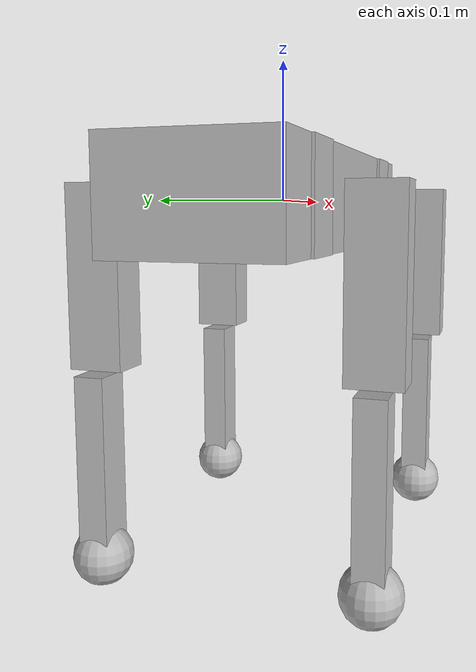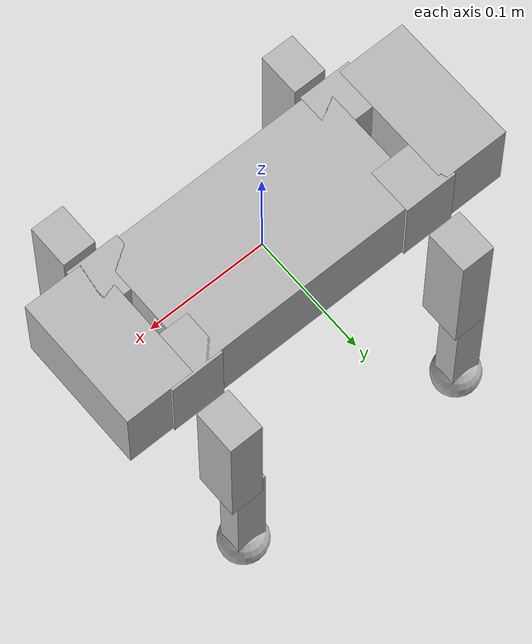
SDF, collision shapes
<sdf version='1.7'>
  <model name='SpotMicroAI'>
    <link name='base_link'>
      <inertial>
        <pose>0 0 0 0 -0 0</pose>
        <mass>3.2</mass>
        <inertia>
          <ixx>300</ixx>
          <ixy>0</ixy>
          <ixz>0</ixz>
          <iyy>300</iyy>
          <iyz>0</iyz>
          <izz>300</izz>
        </inertia>
      </inertial>
      <collision name='base_link_collision'>
        <pose>0 0 0 0 -0 0</pose>
        <geometry>
          <box>
            <size>0.2 0.11 0.07</size>
          </box>
        </geometry>
      </collision>
      <collision name='base_link_fixed_joint_lump__front_link_collision_1'>
        <pose>-0.145 0 0 0 -0 0</pose>
        <geometry>
          <box>
            <size>0.058 0.11 0.07</size>
          </box>
        </geometry>
      </collision>
      <collision name='base_link_fixed_joint_lump__rear_link_collision_2'>
        <pose>0.135 0 0 0 -0 0</pose>
        <geometry>
          <box>
            <size>0.057 0.11 0.07</size>
          </box>
        </geometry>
      </collision>
      <visual name='base_link_visual'>
        <pose>-0.135 0.055 -0.032 0 0 -1.5707</pose>
        <geometry>
          <mesh>
            <scale>0.001 0.001 0.001</scale>
            <uri>model://old_spot_files/meshes/stl_ean/STL/Base.STL</uri>
          </mesh>
        </geometry>
      </visual>
      <visual name='base_link_fixed_joint_lump__front_link_visual_1'>
        <pose>-0.185 0.065 -0.033 0 0 -1.5707</pose>
        <geometry>
          <mesh>
            <scale>0.001 0.001 0.001</scale>
            <uri>model://old_spot_files/meshes/stl_ean/STL/top.STL</uri>
          </mesh>
        </geometry>
      </visual>
      <visual name='base_link_fixed_joint_lump__rear_link_visual_2'>
        <pose>-0.105 0.055 -0.034 0 0 -1.5707</pose>
        <geometry>
          <mesh>
            <scale>0.001 0.001 0.001</scale>
            <uri>model://old_spot_files/meshes/stl_ean/STL/bottom.STL</uri>
          </mesh>
        </geometry>
      </visual>
    </link>
    <joint name='front_left_shoulder' type='revolute'>
      <pose relative_to='base_link'>-0.104 -0.038 0 0 -0 0</pose>
      <parent>base_link</parent>
      <child>front_left_shoulder_link</child>
      <axis>
        <xyz>1 0 0</xyz>
        <limit>
          <lower>-0.548</lower>
          <upper>0.548</upper>
          <effort>1000</effort>
          <velocity>0.7</velocity>
        </limit>
        <dynamics>
          <damping>0</damping>
          <friction>0.5</friction>
          <spring_reference>0</spring_reference>
          <spring_stiffness>0</spring_stiffness>
        </dynamics>
      </axis>
    </joint>
    <link name='front_left_shoulder_link'>
      <pose relative_to='front_left_shoulder'>0 0 0 0 -0 0</pose>
      <inertial>
        <pose>0 0 0 0 -0 0</pose>
        <mass>0.1</mass>
        <inertia>
          <ixx>100</ixx>
          <ixy>0</ixy>
          <ixz>0</ixz>
          <iyy>100</iyy>
          <iyz>0</iyz>
          <izz>100</izz>
        </inertia>
      </inertial>
      <collision name='front_left_shoulder_link_collision'>
        <pose>0 0 0 0 -0 0</pose>
        <geometry>
          <box>
            <size>0.044 0.038 0.07</size>
          </box>
        </geometry>
      </collision>
      <visual name='front_left_shoulder_link_visual'>
        <pose>0.028 -0.03 -0.029 1.57089 -7e-06 3.14159</pose>
        <geometry>
          <mesh>
            <scale>0.001 0.001 0.001</scale>
            <uri>model://old_spot_files/meshes/stl_ean/STL/left_fordward_right_backward_shoulder.STL</uri>
          </mesh>
        </geometry>
      </visual>
    </link>
    <joint name='front_left_leg' type='revolute'>
      <pose relative_to='front_left_shoulder_link'>0 -0.052 0 0 -0 0</pose>
      <parent>front_left_shoulder_link</parent>
      <child>front_left_leg_link</child>
      <axis>
        <xyz>0 1 0</xyz>
        <limit>
          <lower>-2.666</lower>
          <upper>1.548</upper>
          <effort>1000</effort>
          <velocity>0.5</velocity>
        </limit>
        <dynamics>
          <damping>0</damping>
          <friction>0</friction>
          <spring_reference>0</spring_reference>
          <spring_stiffness>0</spring_stiffness>
        </dynamics>
      </axis>
    </joint>
    <link name='front_left_leg_link'>
      <pose relative_to='front_left_leg'>0 0 0 0 -0 0</pose>
      <inertial>
        <pose>0 0 0 0 -0 0</pose>
        <mass>0.15</mass>
        <inertia>
          <ixx>1000</ixx>
          <ixy>0</ixy>
          <ixz>0</ixz>
          <iyy>1000</iyy>
          <iyz>0</iyz>
          <izz>1000</izz>
        </inertia>
      </inertial>
      <collision name='front_left_leg_link_collision'>
        <pose>0 0 -0.05 0 -0 0</pose>
        <geometry>
          <box>
            <size>0.028 0.036 0.12</size>
          </box>
        </geometry>
      </collision>
      <visual name='front_left_leg_link_visual'>
        <pose>-0.02 0.025 -0.132 7e-06 -1.34159 3.14159</pose>
        <geometry>
          <mesh>
            <scale>0.001 0.001 0.001</scale>
            <uri>model://old_spot_files/meshes/stl_ean/STL/left_arm.STL</uri>
          </mesh>
        </geometry>
      </visual>
    </link>
    <joint name='front_left_foot' type='revolute'>
      <pose relative_to='front_left_leg_link'>-0.01 0 -0.12 0 -0 0</pose>
      <parent>front_left_leg_link</parent>
      <child>front_left_foot_link</child>
      <axis>
        <xyz>0 1 0</xyz>
        <limit>
          <lower>-0.1</lower>
          <upper>2.59</upper>
          <effort>1000</effort>
          <velocity>0.5</velocity>
        </limit>
        <dynamics>
          <damping>0</damping>
          <friction>0.5</friction>
          <spring_reference>0</spring_reference>
          <spring_stiffness>0</spring_stiffness>
        </dynamics>
      </axis>
    </joint>
    <link name='front_left_foot_link'>
      <pose relative_to='front_left_foot'>0 0 0 0 -0 0</pose>
      <inertial>
        <pose>0 0 -0.038333 0 -0 0</pose>
        <mass>0.15</mass>
        <inertia>
          <ixx>2000</ixx>
          <ixy>0</ixy>
          <ixz>0</ixz>
          <iyy>2000</iyy>
          <iyz>0</iyz>
          <izz>2000</izz>
        </inertia>
      </inertial>
      <collision name='front_left_foot_link_collision'>
        <pose>0 0 -0.05 0 -0 0</pose>
        <geometry>
          <box>
            <size>0.026 0.02 0.115</size>
          </box>
        </geometry>
      </collision>
      <collision name='front_left_foot_link_fixed_joint_lump__front_left_toe_link_collision_1'>
        <pose>0 0 -0.115 0 -0 0</pose>
        <geometry>
          <sphere>
            <radius>0.02</radius>
          </sphere>
        </geometry>
      </collision>
      <visual name='front_left_foot_link_visual'>
        <pose>0.023 0.018 -0.133 1.5708 -1.5708 0</pose>
        <geometry>
          <mesh>
            <scale>0.001 0.001 0.001</scale>
            <uri>model://old_spot_files/meshes/stl_ean/STL/left_wrist.STL</uri>
          </mesh>
        </geometry>
      </visual>
      <visual name='front_left_foot_link_fixed_joint_lump__front_left_toe_link_visual_1'>
        <pose>0 0 -0.115 3.14159 0.791593 3.14159</pose>
        <geometry>
          <mesh>
            <scale>0.001 0.001 0.001</scale>
            <uri>model://old_spot_files/meshes/stl_ean/STL/Foot_Tip.STL</uri>
          </mesh>
        </geometry>
      </visual>
    </link>
    <joint name='front_right_shoulder' type='revolute'>
      <pose relative_to='base_link'>-0.104 0.038 0 0 -0 0</pose>
      <parent>base_link</parent>
      <child>front_right_shoulder_link</child>
      <axis>
        <xyz>1 0 0</xyz>
        <limit>
          <lower>-0.548</lower>
          <upper>0.548</upper>
          <effort>1000</effort>
          <velocity>0.7</velocity>
        </limit>
        <dynamics>
          <damping>0</damping>
          <friction>0.5</friction>
          <spring_reference>0</spring_reference>
          <spring_stiffness>0</spring_stiffness>
        </dynamics>
      </axis>
    </joint>
    <link name='front_right_shoulder_link'>
      <pose relative_to='front_right_shoulder'>0 0 0 0 -0 0</pose>
      <inertial>
        <pose>0 0 0 0 -0 0</pose>
        <mass>0.1</mass>
        <inertia>
          <ixx>100</ixx>
          <ixy>0</ixy>
          <ixz>0</ixz>
          <iyy>100</iyy>
          <iyz>0</iyz>
          <izz>100</izz>
        </inertia>
      </inertial>
      <collision name='front_right_shoulder_link_collision'>
        <pose>0 0 0 0 -0 0</pose>
        <geometry>
          <box>
            <size>0.044 0.038 0.07</size>
          </box>
        </geometry>
      </collision>
      <visual name='front_right_shoulder_link_visual'>
        <pose>-0.028 0.03 -0.027 1.5707 -0 0</pose>
        <geometry>
          <mesh>
            <scale>0.001 0.001 0.001</scale>
            <uri>model://old_spot_files/meshes/stl_ean/STL/right_fordward_left_backward_shoulder.STL</uri>
          </mesh>
        </geometry>
      </visual>
    </link>
    <joint name='front_right_leg' type='revolute'>
      <pose relative_to='front_right_shoulder_link'>0 0.052 0 0 -0 0</pose>
      <parent>front_right_shoulder_link</parent>
      <child>front_right_leg_link</child>
      <axis>
        <xyz>0 1 0</xyz>
        <limit>
          <lower>-2.666</lower>
          <upper>1.548</upper>
          <effort>1000</effort>
          <velocity>0.5</velocity>
        </limit>
        <dynamics>
          <damping>0</damping>
          <friction>0</friction>
          <spring_reference>0</spring_reference>
          <spring_stiffness>0</spring_stiffness>
        </dynamics>
      </axis>
    </joint>
    <link name='front_right_leg_link'>
      <pose relative_to='front_right_leg'>0 0 0 0 -0 0</pose>
      <inertial>
        <pose>0 0 0 0 -0 0</pose>
        <mass>0.15</mass>
        <inertia>
          <ixx>1000</ixx>
          <ixy>0</ixy>
          <ixz>0</ixz>
          <iyy>1000</iyy>
          <iyz>0</iyz>
          <izz>1000</izz>
        </inertia>
      </inertial>
      <collision name='front_right_leg_link_collision'>
        <pose>0 0 -0.05 0 -0 0</pose>
        <geometry>
          <box>
            <size>0.028 0.036 0.12</size>
          </box>
        </geometry>
      </collision>
      <visual name='front_right_leg_link_visual'>
        <pose>-0.02 0.039 -0.132 7e-06 -1.34159 3.14159</pose>
        <geometry>
          <mesh>
            <scale>0.001 0.001 0.001</scale>
            <uri>model://old_spot_files/meshes/stl_ean/STL/right_arm.STL</uri>
          </mesh>
        </geometry>
      </visual>
    </link>
    <joint name='front_right_foot' type='revolute'>
      <pose relative_to='front_right_leg_link'>-0.01 0 -0.12 0 -0 0</pose>
      <parent>front_right_leg_link</parent>
      <child>front_right_foot_link</child>
      <axis>
        <xyz>0 1 0</xyz>
        <limit>
          <lower>-0.1</lower>
          <upper>2.59</upper>
          <effort>1000</effort>
          <velocity>0.5</velocity>
        </limit>
        <dynamics>
          <damping>0</damping>
          <friction>0.5</friction>
          <spring_reference>0</spring_reference>
          <spring_stiffness>0</spring_stiffness>
        </dynamics>
      </axis>
    </joint>
    <link name='front_right_foot_link'>
      <pose relative_to='front_right_foot'>0 0 0 0 -0 0</pose>
      <inertial>
        <pose>0 0 -0.038333 0 -0 0</pose>
        <mass>0.15</mass>
        <inertia>
          <ixx>2000</ixx>
          <ixy>0</ixy>
          <ixz>0</ixz>
          <iyy>2000</iyy>
          <iyz>0</iyz>
          <izz>2000</izz>
        </inertia>
      </inertial>
      <collision name='front_right_foot_link_collision'>
        <pose>0 0 -0.05 0 -0 0</pose>
        <geometry>
          <box>
            <size>0.026 0.02 0.115</size>
          </box>
        </geometry>
      </collision>
      <collision name='front_right_foot_link_fixed_joint_lump__front_right_toe_link_collision_1'>
        <pose>0 0 -0.115 0 -0 0</pose>
        <geometry>
          <sphere>
            <radius>0.02</radius>
          </sphere>
        </geometry>
      </collision>
      <visual name='front_right_foot_link_visual'>
        <pose>-0.013 -0.018 -0.133 -1.5708 -1.5708 0</pose>
        <geometry>
          <mesh>
            <scale>0.001 0.001 0.001</scale>
            <uri>model://old_spot_files/meshes/stl_ean/STL/right_wrist.STL</uri>
          </mesh>
        </geometry>
      </visual>
      <visual name='front_right_foot_link_fixed_joint_lump__front_right_toe_link_visual_1'>
        <pose>0 0 -0.115 3.14159 0.791593 3.14159</pose>
        <geometry>
          <mesh>
            <scale>0.001 0.001 0.001</scale>
            <uri>model://old_spot_files/meshes/stl_ean/STL/Foot_Tip.STL</uri>
          </mesh>
        </geometry>
      </visual>
    </link>
    <joint name='rear_left_shoulder' type='revolute'>
      <pose relative_to='base_link'>0.104 -0.038 0 0 -0 0</pose>
      <parent>base_link</parent>
      <child>rear_left_shoulder_link</child>
      <axis>
        <xyz>1 0 0</xyz>
        <limit>
          <lower>-0.548</lower>
          <upper>0.548</upper>
          <effort>1000</effort>
          <velocity>0.7</velocity>
        </limit>
        <dynamics>
          <damping>0</damping>
          <friction>0.5</friction>
          <spring_reference>0</spring_reference>
          <spring_stiffness>0</spring_stiffness>
        </dynamics>
      </axis>
    </joint>
    <link name='rear_left_shoulder_link'>
      <pose relative_to='rear_left_shoulder'>0 0 0 0 -0 0</pose>
      <inertial>
        <pose>0 0 0 0 -0 0</pose>
        <mass>0.1</mass>
        <inertia>
          <ixx>100</ixx>
          <ixy>0</ixy>
          <ixz>0</ixz>
          <iyy>100</iyy>
          <iyz>0</iyz>
          <izz>100</izz>
        </inertia>
      </inertial>
      <collision name='rear_left_shoulder_link_collision'>
        <pose>0 0 0 0 -0 0</pose>
        <geometry>
          <box>
            <size>0.044 0.038 0.07</size>
          </box>
        </geometry>
      </collision>
      <visual name='rear_left_shoulder_link_visual'>
        <pose>0.028 -0.03 -0.029 1.57089 -7e-06 3.14159</pose>
        <geometry>
          <mesh>
            <scale>0.001 0.001 0.001</scale>
            <uri>model://old_spot_files/meshes/stl_ean/STL/left_fordward_right_backward_shoulder.STL</uri>
          </mesh>
        </geometry>
      </visual>
    </link>
    <joint name='rear_left_leg' type='revolute'>
      <pose relative_to='rear_left_shoulder_link'>0 -0.052 0 0 -0 0</pose>
      <parent>rear_left_shoulder_link</parent>
      <child>rear_left_leg_link</child>
      <axis>
        <xyz>0 1 0</xyz>
        <limit>
          <lower>-2.666</lower>
          <upper>1.548</upper>
          <effort>1000</effort>
          <velocity>0.5</velocity>
        </limit>
        <dynamics>
          <damping>0</damping>
          <friction>0</friction>
          <spring_reference>0</spring_reference>
          <spring_stiffness>0</spring_stiffness>
        </dynamics>
      </axis>
    </joint>
    <link name='rear_left_leg_link'>
      <pose relative_to='rear_left_leg'>0 0 0 0 -0 0</pose>
      <inertial>
        <pose>0 0 0 0 -0 0</pose>
        <mass>0.15</mass>
        <inertia>
          <ixx>1000</ixx>
          <ixy>0</ixy>
          <ixz>0</ixz>
          <iyy>1000</iyy>
          <iyz>0</iyz>
          <izz>1000</izz>
        </inertia>
      </inertial>
      <collision name='rear_left_leg_link_collision'>
        <pose>0 0 -0.05 0 -0 0</pose>
        <geometry>
          <box>
            <size>0.028 0.036 0.12</size>
          </box>
        </geometry>
      </collision>
      <visual name='rear_left_leg_link_visual'>
        <pose>-0.02 0.025 -0.132 7e-06 -1.34159 3.14159</pose>
        <geometry>
          <mesh>
            <scale>0.001 0.001 0.001</scale>
            <uri>model://old_spot_files/meshes/stl_ean/STL/left_arm.STL</uri>
          </mesh>
        </geometry>
      </visual>
    </link>
    <joint name='rear_left_foot' type='revolute'>
      <pose relative_to='rear_left_leg_link'>-0.01 0 -0.12 0 -0 0</pose>
      <parent>rear_left_leg_link</parent>
      <child>rear_left_foot_link</child>
      <axis>
        <xyz>0 1 0</xyz>
        <limit>
          <lower>-0.1</lower>
          <upper>2.59</upper>
          <effort>1000</effort>
          <velocity>0.5</velocity>
        </limit>
        <dynamics>
          <damping>0</damping>
          <friction>0.5</friction>
          <spring_reference>0</spring_reference>
          <spring_stiffness>0</spring_stiffness>
        </dynamics>
      </axis>
    </joint>
    <link name='rear_left_foot_link'>
      <pose relative_to='rear_left_foot'>0 0 0 0 -0 0</pose>
      <inertial>
        <pose>0 0 -0.038333 0 -0 0</pose>
        <mass>0.15</mass>
        <inertia>
          <ixx>2000</ixx>
          <ixy>0</ixy>
          <ixz>0</ixz>
          <iyy>2000</iyy>
          <iyz>0</iyz>
          <izz>2000</izz>
        </inertia>
      </inertial>
      <collision name='rear_left_foot_link_collision'>
        <pose>0 0 -0.05 0 -0 0</pose>
        <geometry>
          <box>
            <size>0.026 0.02 0.115</size>
          </box>
        </geometry>
      </collision>
      <collision name='rear_left_foot_link_fixed_joint_lump__rear_left_toe_link_collision_1'>
        <pose>0 0 -0.115 0 -0 0</pose>
        <geometry>
          <sphere>
            <radius>0.02</radius>
          </sphere>
        </geometry>
      </collision>
      <visual name='rear_left_foot_link_visual'>
        <pose>0.023 0.018 -0.133 1.5708 -1.5708 0</pose>
        <geometry>
          <mesh>
            <scale>0.001 0.001 0.001</scale>
            <uri>model://old_spot_files/meshes/stl_ean/STL/left_wrist.STL</uri>
          </mesh>
        </geometry>
      </visual>
      <visual name='rear_left_foot_link_fixed_joint_lump__rear_left_toe_link_visual_1'>
        <pose>0 0 -0.115 3.14159 0.791593 3.14159</pose>
        <geometry>
          <mesh>
            <scale>0.001 0.001 0.001</scale>
            <uri>model://old_spot_files/meshes/stl_ean/STL/Foot_Tip.STL</uri>
          </mesh>
        </geometry>
      </visual>
    </link>
    <joint name='rear_right_shoulder' type='revolute'>
      <pose relative_to='base_link'>0.104 0.038 0 0 -0 0</pose>
      <parent>base_link</parent>
      <child>rear_right_shoulder_link</child>
      <axis>
        <xyz>1 0 0</xyz>
        <limit>
          <lower>-0.548</lower>
          <upper>0.548</upper>
          <effort>1000</effort>
          <velocity>0.7</velocity>
        </limit>
        <dynamics>
          <damping>0</damping>
          <friction>0.5</friction>
          <spring_reference>0</spring_reference>
          <spring_stiffness>0</spring_stiffness>
        </dynamics>
      </axis>
    </joint>
    <link name='rear_right_shoulder_link'>
      <pose relative_to='rear_right_shoulder'>0 0 0 0 -0 0</pose>
      <inertial>
        <pose>0 0 0 0 -0 0</pose>
        <mass>0.1</mass>
        <inertia>
          <ixx>100</ixx>
          <ixy>0</ixy>
          <ixz>0</ixz>
          <iyy>100</iyy>
          <iyz>0</iyz>
          <izz>100</izz>
        </inertia>
      </inertial>
      <collision name='rear_right_shoulder_link_collision'>
        <pose>0 0 0 0 -0 0</pose>
        <geometry>
          <box>
            <size>0.044 0.038 0.07</size>
          </box>
        </geometry>
      </collision>
      <visual name='rear_right_shoulder_link_visual'>
        <pose>-0.028 0.03 -0.027 1.5707 -0 0</pose>
        <geometry>
          <mesh>
            <scale>0.001 0.001 0.001</scale>
            <uri>model://old_spot_files/meshes/stl_ean/STL/right_fordward_left_backward_shoulder.STL</uri>
          </mesh>
        </geometry>
      </visual>
    </link>
    <joint name='rear_right_leg' type='revolute'>
      <pose relative_to='rear_right_shoulder_link'>0 0.052 0 0 -0 0</pose>
      <parent>rear_right_shoulder_link</parent>
      <child>rear_right_leg_link</child>
      <axis>
        <xyz>0 1 0</xyz>
        <limit>
          <lower>-2.666</lower>
          <upper>1.548</upper>
          <effort>1000</effort>
          <velocity>0.5</velocity>
        </limit>
        <dynamics>
          <damping>0</damping>
          <friction>0</friction>
          <spring_reference>0</spring_reference>
          <spring_stiffness>0</spring_stiffness>
        </dynamics>
      </axis>
    </joint>
    <link name='rear_right_leg_link'>
      <pose relative_to='rear_right_leg'>0 0 0 0 -0 0</pose>
      <inertial>
        <pose>0 0 0 0 -0 0</pose>
        <mass>0.15</mass>
        <inertia>
          <ixx>1000</ixx>
          <ixy>0</ixy>
          <ixz>0</ixz>
          <iyy>1000</iyy>
          <iyz>0</iyz>
          <izz>1000</izz>
        </inertia>
      </inertial>
      <collision name='rear_right_leg_link_collision'>
        <pose>0 0 -0.05 0 -0 0</pose>
        <geometry>
          <box>
            <size>0.028 0.036 0.12</size>
          </box>
        </geometry>
      </collision>
      <visual name='rear_right_leg_link_visual'>
        <pose>-0.02 0.039 -0.132 7e-06 -1.34159 3.14159</pose>
        <geometry>
          <mesh>
            <scale>0.001 0.001 0.001</scale>
            <uri>model://old_spot_files/meshes/stl_ean/STL/right_arm.STL</uri>
          </mesh>
        </geometry>
      </visual>
    </link>
    <joint name='rear_right_foot' type='revolute'>
      <pose relative_to='rear_right_leg_link'>-0.01 0 -0.12 0 -0 0</pose>
      <parent>rear_right_leg_link</parent>
      <child>rear_right_foot_link</child>
      <axis>
        <xyz>0 1 0</xyz>
        <limit>
          <lower>-0.1</lower>
          <upper>2.59</upper>
          <effort>1000</effort>
          <velocity>0.5</velocity>
        </limit>
        <dynamics>
          <damping>0</damping>
          <friction>0.5</friction>
          <spring_reference>0</spring_reference>
          <spring_stiffness>0</spring_stiffness>
        </dynamics>
      </axis>
    </joint>
    <link name='rear_right_foot_link'>
      <pose relative_to='rear_right_foot'>0 0 0 0 -0 0</pose>
      <inertial>
        <pose>0 0 -0.038333 0 -0 0</pose>
        <mass>0.15</mass>
        <inertia>
          <ixx>2000</ixx>
          <ixy>0</ixy>
          <ixz>0</ixz>
          <iyy>2000</iyy>
          <iyz>0</iyz>
          <izz>2000</izz>
        </inertia>
      </inertial>
      <collision name='rear_right_foot_link_collision'>
        <pose>0 0 -0.05 0 -0 0</pose>
        <geometry>
          <box>
            <size>0.026 0.02 0.115</size>
          </box>
        </geometry>
      </collision>
      <collision name='rear_right_foot_link_fixed_joint_lump__rear_right_toe_link_collision_1'>
        <pose>0 0 -0.115 0 -0 0</pose>
        <geometry>
          <sphere>
            <radius>0.02</radius>
          </sphere>
        </geometry>
      </collision>
      <visual name='rear_right_foot_link_visual'>
        <pose>-0.013 -0.018 -0.133 -1.5708 -1.5708 0</pose>
        <geometry>
          <mesh>
            <scale>0.001 0.001 0.001</scale>
            <uri>model://old_spot_files/meshes/stl_ean/STL/right_wrist.STL</uri>
          </mesh>
        </geometry>
      </visual>
      <visual name='rear_right_foot_link_fixed_joint_lump__rear_right_toe_link_visual_1'>
        <pose>0 0 -0.115 3.14159 0.791593 3.14159</pose>
        <geometry>
          <mesh>
            <scale>0.001 0.001 0.001</scale>
            <uri>model://old_spot_files/meshes/stl_ean/STL/Foot_Tip.STL</uri>
          </mesh>
        </geometry>
      </visual>
    </link>
  </model>
</sdf>
